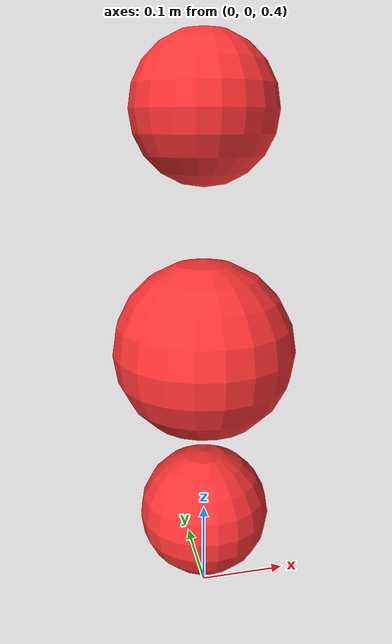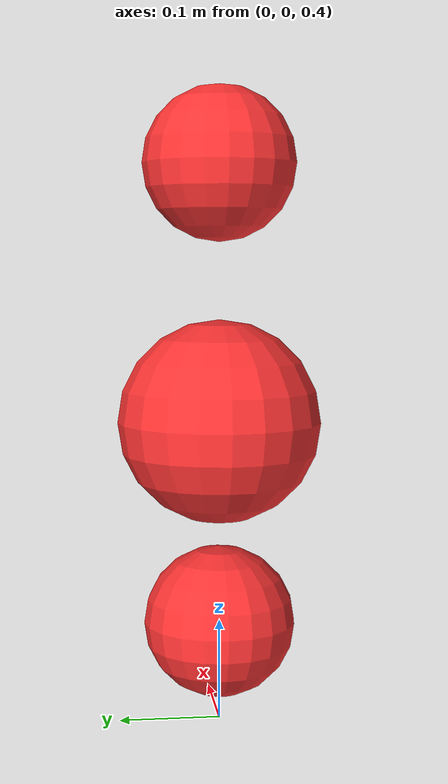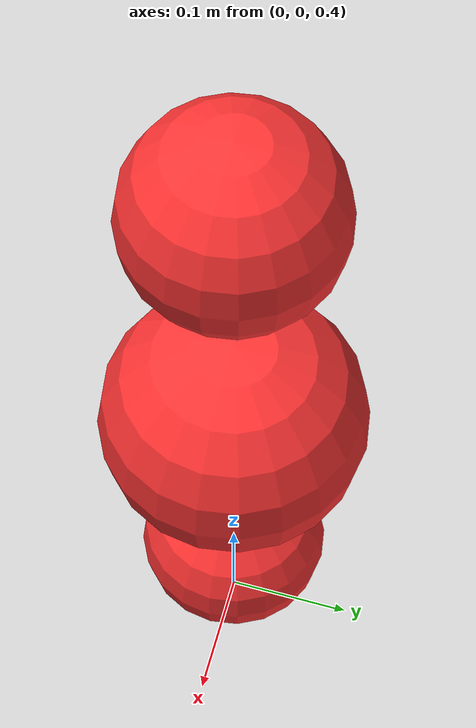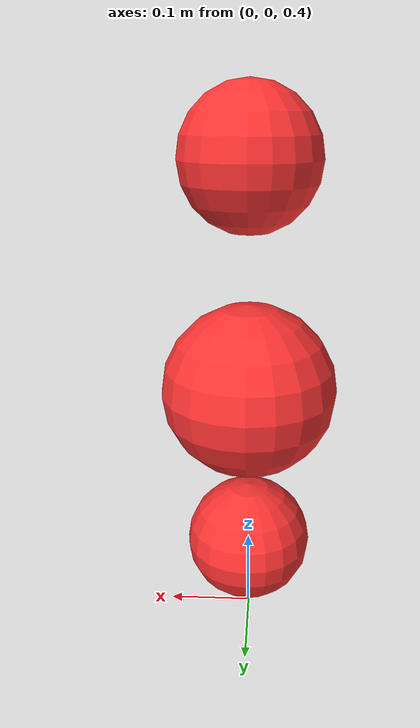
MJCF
<mujoco model="demo">
    <actuator>

        <motor joint="joint_neck"               name="torque_neck"          ctrllimited="true"     ctrlrange="-80.0 80.0"/>
        <motor joint="joint_neck_y"             name="torque_neck_y"        ctrllimited="true"     ctrlrange="-80.0 80.0"/>
        <motor joint="joint_neck_z"             name="torque_neck_z"        ctrllimited="true"     ctrlrange="-80.0 80.0"/>
        <motor joint="joint_neck_r"             name="torque_neck_r"        ctrllimited="true"     ctrlrange="-80.0 80.0"/>
        <motor joint="joint_neck_p"             name="torque_neck_p"        ctrllimited="true"     ctrlrange="-80.0 80.0"/>
        <motor joint="joint_neck_yw"            name="torque_neck_yw"       ctrllimited="true"     ctrlrange="-80.0 80.0"/>

        <motor joint="joint_right_hand"         name="torque_right_hand"    ctrllimited="true"     ctrlrange="-80.0 80.0"/>
        <motor joint="joint_right_hand_y"       name="torque_right_hand_y"  ctrllimited="true"     ctrlrange="-80.0 80.0"/>
        <motor joint="joint_right_hand_z"       name="torque_right_hand_z"  ctrllimited="true"     ctrlrange="-80.0 80.0"/>
        <motor joint="joint_right_hand_r"       name="torque_right_hand_r"  ctrllimited="true"     ctrlrange="-80.0 80.0"/>
        <motor joint="joint_right_hand_p"       name="torque_right_hand_p"  ctrllimited="true"     ctrlrange="-80.0 80.0"/>
        <motor joint="joint_right_hand_yw"      name="torque_right_hand_yw" ctrllimited="true"     ctrlrange="-80.0 80.0"/>

        <motor joint="joint_left_hand"         name="torque_left_hand"      ctrllimited="true"     ctrlrange="-80.0 80.0"/>
        <motor joint="joint_left_hand_y"       name="torque_left_hand_y"    ctrllimited="true"     ctrlrange="-80.0 80.0"/>
        <motor joint="joint_left_hand_z"       name="torque_left_hand_z"    ctrllimited="true"     ctrlrange="-80.0 80.0"/>
        <motor joint="joint_left_hand_r"       name="torque_left_hand_r"    ctrllimited="true"     ctrlrange="-80.0 80.0"/>
        <motor joint="joint_left_hand_p"       name="torque_left_hand_p"    ctrllimited="true"     ctrlrange="-80.0 80.0"/>
        <motor joint="joint_left_hand_yw"      name="torque_left_hand_yw"   ctrllimited="true"     ctrlrange="-80.0 80.0"/>

    </actuator>

    <asset>
    </asset>

    <worldbody>
        <body name="floating_base" pos="0 0 0.6">

        <body>
            <inertial pos="0 0 0" mass="1.0e-6" diaginertia="1.0e-9 1.0e-9 1.0e-9"/>
        <body>
            <inertial pos="0 0 0" mass="1.0e-6" diaginertia="1.0e-9 1.0e-9 1.0e-9"/>
        <body>
            <inertial pos="0 0 0" mass="1.0e-6" diaginertia="1.0e-9 1.0e-9 1.0e-9"/>
        <body>
            <inertial pos="0 0 0" mass="1.0e-6" diaginertia="1.0e-9 1.0e-9 1.0e-9"/>
        <body>
            <inertial pos="0 0 0" mass="1.0e-6" diaginertia="1.0e-9 1.0e-9 1.0e-9"/>
        <body name="base" pos="0 0 0">
            <inertial pos="0 0 0" mass="1.0e-1" diaginertia="1.0e-3 1.0e-3 1.0e-3"/>

            <geom type="sphere" size="0.1" pos="0 0 0.1"
                rgba="1.0 0.2 0.2 1"
                contype="0" conaffinity="0" group="1"
                />
            <geom type="sphere" size="0.075" pos="0 0 -0.1"
                rgba="1.0 0.2 0.2 1"
                contype="0" conaffinity="0" group="1"
                />

            <body name="neck" pos="0 0 0.2">
                <joint name="joint_neck" axis="1 0 0"
                    type="slide" limited="false"
                    armature="0" stiffness="0" damping="0.99" frictionloss="0.99"
                    />
                <inertial pos="0 0 0" mass="1.0e-6" diaginertia="1.0e-9 1.0e-9 1.0e-9"/>
            <body>
                <joint name="joint_neck_y" axis="0 1 0"
                    type="slide" limited="false"
                    armature="0" stiffness="0" damping="0.99" frictionloss="0.99"
                    />
                <inertial pos="0 0 0" mass="1.0e-6" diaginertia="1.0e-9 1.0e-9 1.0e-9"/>
            <body>
                <joint name="joint_neck_z" axis="0 0 1"
                    type="slide" limited="false"
                    armature="0" stiffness="0" damping="0.99" frictionloss="0.99"
                    />
                <inertial pos="0 0 0" mass="1.0e-6" diaginertia="1.0e-9 1.0e-9 1.0e-9"/>
            <body>
                <joint name="joint_neck_r" axis="1 0 0"
                    type="hinge" limited="false"
                    armature="0" stiffness="0" damping="0.99" frictionloss="0.99"
                    />
                <inertial pos="0 0 0" mass="1.0e-6" diaginertia="1.0e-9 1.0e-9 1.0e-9"/>
            <body>
                <joint name="joint_neck_p" axis="0 1 0"
                    type="hinge" limited="false"
                    armature="0" stiffness="0" damping="0.99" frictionloss="0.99"
                    />
                <inertial pos="0 0 0" mass="1.0e-6" diaginertia="1.0e-9 1.0e-9 1.0e-9"/>
            <body name="head" pos="0 0 0">
                <inertial pos="0 0 0" mass="1.0e-0" diaginertia="1.0e-4 1.0e-4 1.0e-4"/>
                <joint name="joint_neck_yw" axis="0 0 1"
                    type="hinge" limited="false"
                    armature="0" stiffness="0" damping="0.99" frictionloss="0.99"
                    />
                <geom type="sphere" size="0.075" pos="0 0 0.15"
                    rgba="1.0 0.2 0.2 1"
                    contype="0" conaffinity="0" group="1"
                    />
                <camera mode="fixed" name="egoview" pos="0.075 0.0 0.15" quat="0.5 -0.5 -0.5 0.5" />

            </body>
            </body>
            </body>
            </body>
            </body>
            </body>

            <body pos="0 0.2 0.2">
                <joint name="joint_left_hand" axis="1 0 0"
                    type="slide" limited="false"
                    armature="0" stiffness="0" damping="0.99" frictionloss="0.99"
                    />
                <inertial pos="0 0 0" mass="1.0e-6" diaginertia="1.0e-9 1.0e-9 1.0e-9"/>
            <body>
                <joint name="joint_left_hand_y" axis="0 1 0"
                    type="slide" limited="false"
                    armature="0" stiffness="0" damping="0.99" frictionloss="0.99"
                    />
                <inertial pos="0 0 0" mass="1.0e-6" diaginertia="1.0e-9 1.0e-9 1.0e-9"/>
            <body>
                <joint name="joint_left_hand_z" axis="0 0 1"
                    type="slide" limited="false"
                    armature="0" stiffness="0" damping="0.99" frictionloss="0.99"
                    />
                <inertial pos="0 0 0" mass="1.0e-6" diaginertia="1.0e-9 1.0e-9 1.0e-9"/>
            <body>
                <joint name="joint_left_hand_r" axis="1 0 0"
                    type="hinge" limited="false"
                    armature="0" stiffness="0" damping="0.99" frictionloss="0.99"
                    />
                <inertial pos="0 0 0" mass="1.0e-6" diaginertia="1.0e-9 1.0e-9 1.0e-9"/>
            <body>
                <joint name="joint_left_hand_p" axis="0 1 0"
                    type="hinge" limited="false"
                    armature="0" stiffness="0" damping="0.99" frictionloss="0.99"
                    />
                <inertial pos="0 0 0" mass="1.0e-6" diaginertia="1.0e-9 1.0e-9 1.0e-9"/>
            <body name="left_arm" pos="0 0 0">
                <inertial pos="0 0 0" mass="1.0e-0" diaginertia="1.0e-4 1.0e-4 1.0e-4"/>
                <joint name="joint_left_hand_yw" axis="0 0 1"
                    type="hinge" limited="false"
                    armature="0" stiffness="0" damping="0.99" frictionloss="0.99"
                    />
                <body name="left_eef_point" pos="0 0 0">
                    <body name="left_gripper_mount" pos="0 0 0" quat="0.5 0.5 0.5 0.5">
                        <camera mode="fixed" name="stereo_l_left_hand" pos="0.05 0.1 -0.1" quat="0 1 0 0" fovy="75"/>
                        <camera mode="fixed" name="stereo_r_left_hand" pos="-0.05 0.1 -0.1" quat="0 1 0 0" fovy="75"/>
                    </body>
                </body>

            </body>
            </body>
            </body>
            </body>
            </body>
            </body>

            <body pos="0 -0.2 0.2">
                <joint name="joint_right_hand" axis="1 0 0"
                    type="slide" limited="false"
                    armature="0" stiffness="0" damping="0.99" frictionloss="0.99"
                    />
                <inertial pos="0 0 0" mass="1.0e-6" diaginertia="1.0e-9 1.0e-9 1.0e-9"/>
            <body>
                <joint name="joint_right_hand_y" axis="0 1 0"
                    type="slide" limited="false"
                    armature="0" stiffness="0" damping="0.99" frictionloss="0.99"
                    />
                <inertial pos="0 0 0" mass="1.0e-6" diaginertia="1.0e-9 1.0e-9 1.0e-9"/>
            <body>
                <joint name="joint_right_hand_z" axis="0 0 1"
                    type="slide" limited="false"
                    armature="0" stiffness="0" damping="0.99" frictionloss="0.99"
                    />
                <inertial pos="0 0 0" mass="1.0e-6" diaginertia="1.0e-9 1.0e-9 1.0e-9"/>
            <body>
                <joint name="joint_right_hand_r" axis="1 0 0"
                    type="hinge" limited="false"
                    armature="0" stiffness="0" damping="0.99" frictionloss="0.99"
                    />
                <inertial pos="0 0 0" mass="1.0e-6" diaginertia="1.0e-9 1.0e-9 1.0e-9"/>
            <body>
                <joint name="joint_right_hand_p" axis="0 1 0"
                    type="hinge" limited="false"
                    armature="0" stiffness="0" damping="0.99" frictionloss="0.99"
                    />
                <inertial pos="0 0 0" mass="1.0e-6" diaginertia="1.0e-9 1.0e-9 1.0e-9"/>
            <body name="right_arm" pos="0 0 0">
                <inertial pos="0 0 0" mass="1.0e-0" diaginertia="1.0e-4 1.0e-4 1.0e-4"/>
                <joint name="joint_right_hand_yw" axis="0 0 1"
                    type="hinge" limited="false"
                    armature="0" stiffness="0" damping="0.99" frictionloss="0.99"
                    />
                <body name="right_eef_point" pos="0 0 0">
                    <body name="right_gripper_mount" pos="0 0 0" quat="0.5 0.5 0.5 0.5">
                        <camera mode="fixed" name="stereo_l_right_hand" pos="0.05 0.1 0.0" quat="0 1 0 0" fovy="120"/>
                        <camera mode="fixed" name="stereo_r_right_hand" pos="-0.05 0.1 0.0" quat="0 1 0 0" fovy="120"/>
                    </body>
                </body>
            </body>
            </body>
            </body>
            </body>
            </body>
            </body>

        </body>
        </body>
        </body>
        </body>
        </body>
        </body>

        </body>
    </worldbody>
</mujoco>
